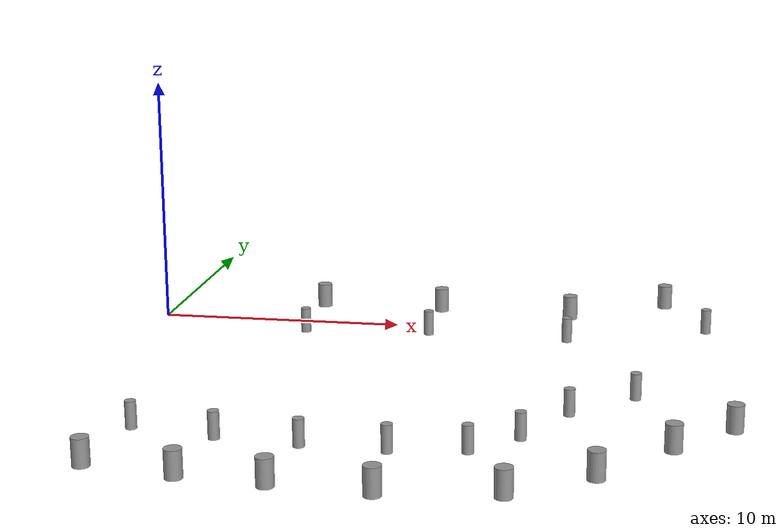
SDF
<sdf version="1.6">
 <world name="default">
  <model name="cylinder_right_clone_2">
   <link name="link_0">
    <inertial>
     <mass>1</mass>
     <inertia><ixx>0.145833</ixx><ixy>0</ixy><ixz>0</ixz><iyy>0.145833</iyy><iyz>0</iyz><izz>0.125</izz></inertia>
    </inertial>
    <visual name="visual">
     <geometry><cylinder><radius>0.2</radius><length>1</length></cylinder></geometry>
     <material>
      <lighting>1</lighting>
      <script><uri>file://media/materials/scripts/gazebo.material</uri><name>Gazebo/Grey</name></script>
      <ambient>0.3 0.3 0.3 1</ambient>
      <diffuse>0.7 0.7 0.7 1</diffuse>
      <specular>0.01 0.01 0.01 1</specular>
      <emissive>0 0 0 1</emissive>
      <shader type="vertex"><normal_map>__default__</normal_map></shader>
     </material>
    </visual>
    <collision name="collision">
     <geometry><cylinder><radius>0.2</radius><length>1</length></cylinder></geometry>
     <surface>
      <friction>
       <ode><mu>1</mu><mu2>1</mu2><fdir1>0 0 0</fdir1><slip1>0</slip1><slip2>0</slip2></ode>
       <torsional>
        <coefficient>1</coefficient>
        <patch_radius>0</patch_radius>
        <surface_radius>0</surface_radius>
        <use_patch_radius>1</use_patch_radius>
        <ode><slip>0</slip></ode>
       </torsional>
      </friction>
      <bounce><restitution_coefficient>0</restitution_coefficient><threshold>1e+06</threshold></bounce>
      <contact>
       <collide_without_contact>0</collide_without_contact>
       <collide_without_contact_bitmask>1</collide_without_contact_bitmask>
       <collide_bitmask>1</collide_bitmask>
       <ode>
        <soft_cfm>0</soft_cfm>
        <soft_erp>0.2</soft_erp>
        <kp>1e+13</kp>
        <kd>1</kd>
        <max_vel>0.01</max_vel>
        <min_depth>0</min_depth>
       </ode>
       <bullet>
        <split_impulse>1</split_impulse>
        <split_impulse_penetration_threshold>-0.01</split_impulse_penetration_threshold>
        <soft_cfm>0</soft_cfm>
        <soft_erp>0.2</soft_erp>
        <kp>1e+13</kp>
        <kd>1</kd>
       </bullet>
      </contact>
     </surface>
    </collision>
   </link>
   <static>0</static>
   <pose>6.39184 -1.35941 0.49912 0 -0 0.000408</pose>
  </model>
  <model name="cylinder_right_clone_3">
   <link name="link_0">
    <inertial>
     <mass>1</mass>
     <inertia><ixx>0.145833</ixx><ixy>0</ixy><ixz>0</ixz><iyy>0.145833</iyy><iyz>0</iyz><izz>0.125</izz></inertia>
    </inertial>
    <visual name="visual">
     <geometry><cylinder><radius>0.2</radius><length>1</length></cylinder></geometry>
     <material>
      <lighting>1</lighting>
      <script><uri>file://media/materials/scripts/gazebo.material</uri><name>Gazebo/Grey</name></script>
      <ambient>0.3 0.3 0.3 1</ambient>
      <diffuse>0.7 0.7 0.7 1</diffuse>
      <specular>0.01 0.01 0.01 1</specular>
      <emissive>0 0 0 1</emissive>
      <shader type="vertex"><normal_map>__default__</normal_map></shader>
     </material>
    </visual>
    <collision name="collision">
     <geometry><cylinder><radius>0.2</radius><length>1</length></cylinder></geometry>
     <surface>
      <friction>
       <ode><mu>1</mu><mu2>1</mu2><fdir1>0 0 0</fdir1><slip1>0</slip1><slip2>0</slip2></ode>
       <torsional>
        <coefficient>1</coefficient>
        <patch_radius>0</patch_radius>
        <surface_radius>0</surface_radius>
        <use_patch_radius>1</use_patch_radius>
        <ode><slip>0</slip></ode>
       </torsional>
      </friction>
      <bounce><restitution_coefficient>0</restitution_coefficient><threshold>1e+06</threshold></bounce>
      <contact>
       <collide_without_contact>0</collide_without_contact>
       <collide_without_contact_bitmask>1</collide_without_contact_bitmask>
       <collide_bitmask>1</collide_bitmask>
       <ode>
        <soft_cfm>0</soft_cfm>
        <soft_erp>0.2</soft_erp>
        <kp>1e+13</kp>
        <kd>1</kd>
        <max_vel>0.01</max_vel>
        <min_depth>0</min_depth>
       </ode>
       <bullet>
        <split_impulse>1</split_impulse>
        <split_impulse_penetration_threshold>-0.01</split_impulse_penetration_threshold>
        <soft_cfm>0</soft_cfm>
        <soft_erp>0.2</soft_erp>
        <kp>1e+13</kp>
        <kd>1</kd>
       </bullet>
      </contact>
     </surface>
    </collision>
   </link>
   <static>0</static>
   <pose>17.1437 -1.15298 0.49912 0 -0 0.000408</pose>
  </model>
  <model name="cylinder_right_clone_5">
   <link name="link_0">
    <inertial>
     <mass>1</mass>
     <inertia><ixx>0.145833</ixx><ixy>0</ixy><ixz>0</ixz><iyy>0.145833</iyy><iyz>0</iyz><izz>0.125</izz></inertia>
    </inertial>
    <visual name="visual">
     <geometry><cylinder><radius>0.2</radius><length>1</length></cylinder></geometry>
     <material>
      <lighting>1</lighting>
      <script><uri>file://media/materials/scripts/gazebo.material</uri><name>Gazebo/Grey</name></script>
      <ambient>0.3 0.3 0.3 1</ambient>
      <diffuse>0.7 0.7 0.7 1</diffuse>
      <specular>0.01 0.01 0.01 1</specular>
      <emissive>0 0 0 1</emissive>
      <shader type="vertex"><normal_map>__default__</normal_map></shader>
     </material>
    </visual>
    <collision name="collision">
     <geometry><cylinder><radius>0.2</radius><length>1</length></cylinder></geometry>
     <surface>
      <friction>
       <ode><mu>1</mu><mu2>1</mu2><fdir1>0 0 0</fdir1><slip1>0</slip1><slip2>0</slip2></ode>
       <torsional>
        <coefficient>1</coefficient>
        <patch_radius>0</patch_radius>
        <surface_radius>0</surface_radius>
        <use_patch_radius>1</use_patch_radius>
        <ode><slip>0</slip></ode>
       </torsional>
      </friction>
      <bounce><restitution_coefficient>0</restitution_coefficient><threshold>1e+06</threshold></bounce>
      <contact>
       <collide_without_contact>0</collide_without_contact>
       <collide_without_contact_bitmask>1</collide_without_contact_bitmask>
       <collide_bitmask>1</collide_bitmask>
       <ode>
        <soft_cfm>0</soft_cfm>
        <soft_erp>0.2</soft_erp>
        <kp>1e+13</kp>
        <kd>1</kd>
        <max_vel>0.01</max_vel>
        <min_depth>0</min_depth>
       </ode>
       <bullet>
        <split_impulse>1</split_impulse>
        <split_impulse_penetration_threshold>-0.01</split_impulse_penetration_threshold>
        <soft_cfm>0</soft_cfm>
        <soft_erp>0.2</soft_erp>
        <kp>1e+13</kp>
        <kd>1</kd>
       </bullet>
      </contact>
     </surface>
    </collision>
   </link>
   <static>0</static>
   <pose>11.4796 -1.00544 0.49912 0 -0 0.000408</pose>
  </model>
  <model name="cylinder_right_clone_6">
   <link name="link_0">
    <inertial>
     <mass>1</mass>
     <inertia><ixx>0.145833</ixx><ixy>0</ixy><ixz>0</ixz><iyy>0.145833</iyy><iyz>0</iyz><izz>0.125</izz></inertia>
    </inertial>
    <visual name="visual">
     <geometry><cylinder><radius>0.2</radius><length>1</length></cylinder></geometry>
     <material>
      <lighting>1</lighting>
      <script><uri>file://media/materials/scripts/gazebo.material</uri><name>Gazebo/Grey</name></script>
      <ambient>0.3 0.3 0.3 1</ambient>
      <diffuse>0.7 0.7 0.7 1</diffuse>
      <specular>0.01 0.01 0.01 1</specular>
      <emissive>0 0 0 1</emissive>
      <shader type="vertex"><normal_map>__default__</normal_map></shader>
     </material>
    </visual>
    <collision name="collision">
     <geometry><cylinder><radius>0.2</radius><length>1</length></cylinder></geometry>
     <surface>
      <friction>
       <ode><mu>1</mu><mu2>1</mu2><fdir1>0 0 0</fdir1><slip1>0</slip1><slip2>0</slip2></ode>
       <torsional>
        <coefficient>1</coefficient>
        <patch_radius>0</patch_radius>
        <surface_radius>0</surface_radius>
        <use_patch_radius>1</use_patch_radius>
        <ode><slip>0</slip></ode>
       </torsional>
      </friction>
      <bounce><restitution_coefficient>0</restitution_coefficient><threshold>1e+06</threshold></bounce>
      <contact>
       <collide_without_contact>0</collide_without_contact>
       <collide_without_contact_bitmask>1</collide_without_contact_bitmask>
       <collide_bitmask>1</collide_bitmask>
       <ode>
        <soft_cfm>0</soft_cfm>
        <soft_erp>0.2</soft_erp>
        <kp>1e+13</kp>
        <kd>1</kd>
        <max_vel>0.01</max_vel>
        <min_depth>0</min_depth>
       </ode>
       <bullet>
        <split_impulse>1</split_impulse>
        <split_impulse_penetration_threshold>-0.01</split_impulse_penetration_threshold>
        <soft_cfm>0</soft_cfm>
        <soft_erp>0.2</soft_erp>
        <kp>1e+13</kp>
        <kd>1</kd>
       </bullet>
      </contact>
     </surface>
    </collision>
   </link>
   <static>0</static>
   <pose>22.7344 0.858613 0.49912 0 -0 0.000422</pose>
  </model>
  <model name="cylinder_left_clone_1">
   <link name="link_1">
    <inertial>
     <mass>1</mass>
     <inertia><ixx>0.145833</ixx><ixy>0</ixy><ixz>0</ixz><iyy>0.145833</iyy><iyz>0</iyz><izz>0.125</izz></inertia>
    </inertial>
    <visual name="visual">
     <geometry><cylinder><radius>0.3</radius><length>1</length></cylinder></geometry>
     <material>
      <lighting>1</lighting>
      <script><uri>file://media/materials/scripts/gazebo.material</uri><name>Gazebo/Grey</name></script>
      <ambient>0.3 0.3 0.3 1</ambient>
      <diffuse>0.7 0.7 0.7 1</diffuse>
      <specular>0.01 0.01 0.01 1</specular>
      <emissive>0 0 0 1</emissive>
      <shader type="vertex"><normal_map>__default__</normal_map></shader>
     </material>
    </visual>
    <collision name="collision">
     <geometry><cylinder><radius>0.3</radius><length>1</length></cylinder></geometry>
     <surface>
      <friction>
       <ode><mu>1</mu><mu2>1</mu2><fdir1>0 0 0</fdir1><slip1>0</slip1><slip2>0</slip2></ode>
       <torsional>
        <coefficient>1</coefficient>
        <patch_radius>0</patch_radius>
        <surface_radius>0</surface_radius>
        <use_patch_radius>1</use_patch_radius>
        <ode><slip>0</slip></ode>
       </torsional>
      </friction>
      <bounce><restitution_coefficient>0</restitution_coefficient><threshold>1e+06</threshold></bounce>
      <contact>
       <collide_without_contact>0</collide_without_contact>
       <collide_without_contact_bitmask>1</collide_without_contact_bitmask>
       <collide_bitmask>1</collide_bitmask>
       <ode>
        <soft_cfm>0</soft_cfm>
        <soft_erp>0.2</soft_erp>
        <kp>1e+13</kp>
        <kd>1</kd>
        <max_vel>0.01</max_vel>
        <min_depth>0</min_depth>
       </ode>
       <bullet>
        <split_impulse>1</split_impulse>
        <split_impulse_penetration_threshold>-0.01</split_impulse_penetration_threshold>
        <soft_cfm>0</soft_cfm>
        <soft_erp>0.2</soft_erp>
        <kp>1e+13</kp>
        <kd>1</kd>
       </bullet>
      </contact>
     </surface>
    </collision>
   </link>
   <static>0</static>
   <pose>6.35243 2.44454 0.49912 0 -0 0</pose>
  </model>
  <model name="cylinder_left_clone_2_clone">
   <link name="link_1">
    <inertial>
     <mass>1</mass>
     <inertia><ixx>0.145833</ixx><ixy>0</ixy><ixz>0</ixz><iyy>0.145833</iyy><iyz>0</iyz><izz>0.125</izz></inertia>
    </inertial>
    <visual name="visual">
     <geometry><cylinder><radius>0.3</radius><length>1</length></cylinder></geometry>
     <material>
      <lighting>1</lighting>
      <script><uri>file://media/materials/scripts/gazebo.material</uri><name>Gazebo/Grey</name></script>
      <ambient>0.3 0.3 0.3 1</ambient>
      <diffuse>0.7 0.7 0.7 1</diffuse>
      <specular>0.01 0.01 0.01 1</specular>
      <emissive>0 0 0 1</emissive>
      <shader type="vertex"><normal_map>__default__</normal_map></shader>
     </material>
    </visual>
    <collision name="collision">
     <geometry><cylinder><radius>0.3</radius><length>1</length></cylinder></geometry>
     <surface>
      <friction>
       <ode><mu>1</mu><mu2>1</mu2><fdir1>0 0 0</fdir1><slip1>0</slip1><slip2>0</slip2></ode>
       <torsional>
        <coefficient>1</coefficient>
        <patch_radius>0</patch_radius>
        <surface_radius>0</surface_radius>
        <use_patch_radius>1</use_patch_radius>
        <ode><slip>0</slip></ode>
       </torsional>
      </friction>
      <bounce><restitution_coefficient>0</restitution_coefficient><threshold>1e+06</threshold></bounce>
      <contact>
       <collide_without_contact>0</collide_without_contact>
       <collide_without_contact_bitmask>1</collide_without_contact_bitmask>
       <collide_bitmask>1</collide_bitmask>
       <ode>
        <soft_cfm>0</soft_cfm>
        <soft_erp>0.2</soft_erp>
        <kp>1e+13</kp>
        <kd>1</kd>
        <max_vel>0.01</max_vel>
        <min_depth>0</min_depth>
       </ode>
       <bullet>
        <split_impulse>1</split_impulse>
        <split_impulse_penetration_threshold>-0.01</split_impulse_penetration_threshold>
        <soft_cfm>0</soft_cfm>
        <soft_erp>0.2</soft_erp>
        <kp>1e+13</kp>
        <kd>1</kd>
       </bullet>
      </contact>
     </surface>
    </collision>
   </link>
   <static>0</static>
   <pose>21.0723 4.35557 0.49912 0 0 -2.56426</pose>
  </model>
  <model name="cylinder_left_clone_2_clone_clone">
   <link name="link_1">
    <inertial>
     <mass>1</mass>
     <inertia><ixx>0.145833</ixx><ixy>0</ixy><ixz>0</ixz><iyy>0.145833</iyy><iyz>0</iyz><izz>0.125</izz></inertia>
    </inertial>
    <visual name="visual">
     <geometry><cylinder><radius>0.3</radius><length>1</length></cylinder></geometry>
     <material>
      <lighting>1</lighting>
      <script><uri>file://media/materials/scripts/gazebo.material</uri><name>Gazebo/Grey</name></script>
      <ambient>0.3 0.3 0.3 1</ambient>
      <diffuse>0.7 0.7 0.7 1</diffuse>
      <specular>0.01 0.01 0.01 1</specular>
      <emissive>0 0 0 1</emissive>
      <shader type="vertex"><normal_map>__default__</normal_map></shader>
     </material>
    </visual>
    <collision name="collision">
     <geometry><cylinder><radius>0.3</radius><length>1</length></cylinder></geometry>
     <surface>
      <friction>
       <ode><mu>1</mu><mu2>1</mu2><fdir1>0 0 0</fdir1><slip1>0</slip1><slip2>0</slip2></ode>
       <torsional>
        <coefficient>1</coefficient>
        <patch_radius>0</patch_radius>
        <surface_radius>0</surface_radius>
        <use_patch_radius>1</use_patch_radius>
        <ode><slip>0</slip></ode>
       </torsional>
      </friction>
      <bounce><restitution_coefficient>0</restitution_coefficient><threshold>1e+06</threshold></bounce>
      <contact>
       <collide_without_contact>0</collide_without_contact>
       <collide_without_contact_bitmask>1</collide_without_contact_bitmask>
       <collide_bitmask>1</collide_bitmask>
       <ode>
        <soft_cfm>0</soft_cfm>
        <soft_erp>0.2</soft_erp>
        <kp>1e+13</kp>
        <kd>1</kd>
        <max_vel>0.01</max_vel>
        <min_depth>0</min_depth>
       </ode>
       <bullet>
        <split_impulse>1</split_impulse>
        <split_impulse_penetration_threshold>-0.01</split_impulse_penetration_threshold>
        <soft_cfm>0</soft_cfm>
        <soft_erp>0.2</soft_erp>
        <kp>1e+13</kp>
        <kd>1</kd>
       </bullet>
      </contact>
     </surface>
    </collision>
   </link>
   <static>0</static>
   <pose>17.0861 2.10228 0.49912 0 -0 0</pose>
  </model>
  <model name="cylinder_left_clone_2_clone_10">
   <link name="link_1">
    <inertial>
     <mass>1</mass>
     <inertia><ixx>0.145833</ixx><ixy>0</ixy><ixz>0</ixz><iyy>0.145833</iyy><iyz>0</iyz><izz>0.125</izz></inertia>
    </inertial>
    <visual name="visual">
     <geometry><cylinder><radius>0.3</radius><length>1</length></cylinder></geometry>
     <material>
      <lighting>1</lighting>
      <script><uri>file://media/materials/scripts/gazebo.material</uri><name>Gazebo/Grey</name></script>
      <ambient>0.3 0.3 0.3 1</ambient>
      <diffuse>0.7 0.7 0.7 1</diffuse>
      <specular>0.01 0.01 0.01 1</specular>
      <emissive>0 0 0 1</emissive>
      <shader type="vertex"><normal_map>__default__</normal_map></shader>
     </material>
    </visual>
    <collision name="collision">
     <geometry><cylinder><radius>0.3</radius><length>1</length></cylinder></geometry>
     <surface>
      <friction>
       <ode><mu>1</mu><mu2>1</mu2><fdir1>0 0 0</fdir1><slip1>0</slip1><slip2>0</slip2></ode>
       <torsional>
        <coefficient>1</coefficient>
        <patch_radius>0</patch_radius>
        <surface_radius>0</surface_radius>
        <use_patch_radius>1</use_patch_radius>
        <ode><slip>0</slip></ode>
       </torsional>
      </friction>
      <bounce><restitution_coefficient>0</restitution_coefficient><threshold>1e+06</threshold></bounce>
      <contact>
       <collide_without_contact>0</collide_without_contact>
       <collide_without_contact_bitmask>1</collide_without_contact_bitmask>
       <collide_bitmask>1</collide_bitmask>
       <ode>
        <soft_cfm>0</soft_cfm>
        <soft_erp>0.2</soft_erp>
        <kp>1e+13</kp>
        <kd>1</kd>
        <max_vel>0.01</max_vel>
        <min_depth>0</min_depth>
       </ode>
       <bullet>
        <split_impulse>1</split_impulse>
        <split_impulse_penetration_threshold>-0.01</split_impulse_penetration_threshold>
        <soft_cfm>0</soft_cfm>
        <soft_erp>0.2</soft_erp>
        <kp>1e+13</kp>
        <kd>1</kd>
       </bullet>
      </contact>
     </surface>
    </collision>
   </link>
   <static>0</static>
   <pose>23.3986 -10.3326 0.49912 0 -0 0</pose>
  </model>
  <model name="cylinder_left_clone_2_clone_11">
   <link name="link_1">
    <inertial>
     <mass>1</mass>
     <inertia><ixx>0.145833</ixx><ixy>0</ixy><ixz>0</ixz><iyy>0.145833</iyy><iyz>0</iyz><izz>0.125</izz></inertia>
    </inertial>
    <visual name="visual">
     <geometry><cylinder><radius>0.3</radius><length>1</length></cylinder></geometry>
     <material>
      <lighting>1</lighting>
      <script><uri>file://media/materials/scripts/gazebo.material</uri><name>Gazebo/Grey</name></script>
      <ambient>0.3 0.3 0.3 1</ambient>
      <diffuse>0.7 0.7 0.7 1</diffuse>
      <specular>0.01 0.01 0.01 1</specular>
      <emissive>0 0 0 1</emissive>
      <shader type="vertex"><normal_map>__default__</normal_map></shader>
     </material>
    </visual>
    <collision name="collision">
     <geometry><cylinder><radius>0.3</radius><length>1</length></cylinder></geometry>
     <surface>
      <friction>
       <ode><mu>1</mu><mu2>1</mu2><fdir1>0 0 0</fdir1><slip1>0</slip1><slip2>0</slip2></ode>
       <torsional>
        <coefficient>1</coefficient>
        <patch_radius>0</patch_radius>
        <surface_radius>0</surface_radius>
        <use_patch_radius>1</use_patch_radius>
        <ode><slip>0</slip></ode>
       </torsional>
      </friction>
      <bounce><restitution_coefficient>0</restitution_coefficient><threshold>1e+06</threshold></bounce>
      <contact>
       <collide_without_contact>0</collide_without_contact>
       <collide_without_contact_bitmask>1</collide_without_contact_bitmask>
       <collide_bitmask>1</collide_bitmask>
       <ode>
        <soft_cfm>0</soft_cfm>
        <soft_erp>0.2</soft_erp>
        <kp>1e+13</kp>
        <kd>1</kd>
        <max_vel>0.01</max_vel>
        <min_depth>0</min_depth>
       </ode>
       <bullet>
        <split_impulse>1</split_impulse>
        <split_impulse_penetration_threshold>-0.01</split_impulse_penetration_threshold>
        <soft_cfm>0</soft_cfm>
        <soft_erp>0.2</soft_erp>
        <kp>1e+13</kp>
        <kd>1</kd>
       </bullet>
      </contact>
     </surface>
    </collision>
   </link>
   <static>0</static>
   <pose>21.3275 -12.4464 0.49912 0 0 -2e-06</pose>
  </model>
  <model name="cylinder_left_clone_2_clone_12">
   <link name="link_1">
    <inertial>
     <mass>1</mass>
     <inertia><ixx>0.145833</ixx><ixy>0</ixy><ixz>0</ixz><iyy>0.145833</iyy><iyz>0</iyz><izz>0.125</izz></inertia>
    </inertial>
    <visual name="visual">
     <geometry><cylinder><radius>0.3</radius><length>1</length></cylinder></geometry>
     <material>
      <lighting>1</lighting>
      <script><uri>file://media/materials/scripts/gazebo.material</uri><name>Gazebo/Grey</name></script>
      <ambient>0.3 0.3 0.3 1</ambient>
      <diffuse>0.7 0.7 0.7 1</diffuse>
      <specular>0.01 0.01 0.01 1</specular>
      <emissive>0 0 0 1</emissive>
      <shader type="vertex"><normal_map>__default__</normal_map></shader>
     </material>
    </visual>
    <collision name="collision">
     <geometry><cylinder><radius>0.3</radius><length>1</length></cylinder></geometry>
     <surface>
      <friction>
       <ode><mu>1</mu><mu2>1</mu2><fdir1>0 0 0</fdir1><slip1>0</slip1><slip2>0</slip2></ode>
       <torsional>
        <coefficient>1</coefficient>
        <patch_radius>0</patch_radius>
        <surface_radius>0</surface_radius>
        <use_patch_radius>1</use_patch_radius>
        <ode><slip>0</slip></ode>
       </torsional>
      </friction>
      <bounce><restitution_coefficient>0</restitution_coefficient><threshold>1e+06</threshold></bounce>
      <contact>
       <collide_without_contact>0</collide_without_contact>
       <collide_without_contact_bitmask>1</collide_without_contact_bitmask>
       <collide_bitmask>1</collide_bitmask>
       <ode>
        <soft_cfm>0</soft_cfm>
        <soft_erp>0.2</soft_erp>
        <kp>1e+13</kp>
        <kd>1</kd>
        <max_vel>0.01</max_vel>
        <min_depth>0</min_depth>
       </ode>
       <bullet>
        <split_impulse>1</split_impulse>
        <split_impulse_penetration_threshold>-0.01</split_impulse_penetration_threshold>
        <soft_cfm>0</soft_cfm>
        <soft_erp>0.2</soft_erp>
        <kp>1e+13</kp>
        <kd>1</kd>
       </bullet>
      </contact>
     </surface>
    </collision>
   </link>
   <static>0</static>
   <pose>18.9287 -15.1342 0.49912 0 -0 0</pose>
  </model>
  <model name="cylinder_left_clone_2_clone_13">
   <link name="link_1">
    <inertial>
     <mass>1</mass>
     <inertia><ixx>0.145833</ixx><ixy>0</ixy><ixz>0</ixz><iyy>0.145833</iyy><iyz>0</iyz><izz>0.125</izz></inertia>
    </inertial>
    <visual name="visual">
     <geometry><cylinder><radius>0.3</radius><length>1</length></cylinder></geometry>
     <material>
      <lighting>1</lighting>
      <script><uri>file://media/materials/scripts/gazebo.material</uri><name>Gazebo/Grey</name></script>
      <ambient>0.3 0.3 0.3 1</ambient>
      <diffuse>0.7 0.7 0.7 1</diffuse>
      <specular>0.01 0.01 0.01 1</specular>
      <emissive>0 0 0 1</emissive>
      <shader type="vertex"><normal_map>__default__</normal_map></shader>
     </material>
    </visual>
    <collision name="collision">
     <geometry><cylinder><radius>0.3</radius><length>1</length></cylinder></geometry>
     <surface>
      <friction>
       <ode><mu>1</mu><mu2>1</mu2><fdir1>0 0 0</fdir1><slip1>0</slip1><slip2>0</slip2></ode>
       <torsional>
        <coefficient>1</coefficient>
        <patch_radius>0</patch_radius>
        <surface_radius>0</surface_radius>
        <use_patch_radius>1</use_patch_radius>
        <ode><slip>0</slip></ode>
       </torsional>
      </friction>
      <bounce><restitution_coefficient>0</restitution_coefficient><threshold>1e+06</threshold></bounce>
      <contact>
       <collide_without_contact>0</collide_without_contact>
       <collide_without_contact_bitmask>1</collide_without_contact_bitmask>
       <collide_bitmask>1</collide_bitmask>
       <ode>
        <soft_cfm>0</soft_cfm>
        <soft_erp>0.2</soft_erp>
        <kp>1e+13</kp>
        <kd>1</kd>
        <max_vel>0.01</max_vel>
        <min_depth>0</min_depth>
       </ode>
       <bullet>
        <split_impulse>1</split_impulse>
        <split_impulse_penetration_threshold>-0.01</split_impulse_penetration_threshold>
        <soft_cfm>0</soft_cfm>
        <soft_erp>0.2</soft_erp>
        <kp>1e+13</kp>
        <kd>1</kd>
       </bullet>
      </contact>
     </surface>
    </collision>
   </link>
   <static>0</static>
   <pose>16.2148 -16.9218 0.49912 0 -0 0</pose>
  </model>
  <model name="cylinder_left_clone_2_clone_14">
   <link name="link_1">
    <inertial>
     <mass>1</mass>
     <inertia><ixx>0.145833</ixx><ixy>0</ixy><ixz>0</ixz><iyy>0.145833</iyy><iyz>0</iyz><izz>0.125</izz></inertia>
    </inertial>
    <visual name="visual">
     <geometry><cylinder><radius>0.3</radius><length>1</length></cylinder></geometry>
     <material>
      <lighting>1</lighting>
      <script><uri>file://media/materials/scripts/gazebo.material</uri><name>Gazebo/Grey</name></script>
      <ambient>0.3 0.3 0.3 1</ambient>
      <diffuse>0.7 0.7 0.7 1</diffuse>
      <specular>0.01 0.01 0.01 1</specular>
      <emissive>0 0 0 1</emissive>
      <shader type="vertex"><normal_map>__default__</normal_map></shader>
     </material>
    </visual>
    <collision name="collision">
     <geometry><cylinder><radius>0.3</radius><length>1</length></cylinder></geometry>
     <surface>
      <friction>
       <ode><mu>1</mu><mu2>1</mu2><fdir1>0 0 0</fdir1><slip1>0</slip1><slip2>0</slip2></ode>
       <torsional>
        <coefficient>1</coefficient>
        <patch_radius>0</patch_radius>
        <surface_radius>0</surface_radius>
        <use_patch_radius>1</use_patch_radius>
        <ode><slip>0</slip></ode>
       </torsional>
      </friction>
      <bounce><restitution_coefficient>0</restitution_coefficient><threshold>1e+06</threshold></bounce>
      <contact>
       <collide_without_contact>0</collide_without_contact>
       <collide_without_contact_bitmask>1</collide_without_contact_bitmask>
       <collide_bitmask>1</collide_bitmask>
       <ode>
        <soft_cfm>0</soft_cfm>
        <soft_erp>0.2</soft_erp>
        <kp>1e+13</kp>
        <kd>1</kd>
        <max_vel>0.01</max_vel>
        <min_depth>0</min_depth>
       </ode>
       <bullet>
        <split_impulse>1</split_impulse>
        <split_impulse_penetration_threshold>-0.01</split_impulse_penetration_threshold>
        <soft_cfm>0</soft_cfm>
        <soft_erp>0.2</soft_erp>
        <kp>1e+13</kp>
        <kd>1</kd>
       </bullet>
      </contact>
     </surface>
    </collision>
   </link>
   <static>0</static>
   <pose>12.2538 -17.3818 0.49912 0 0 -3.01661</pose>
  </model>
  <model name="cylinder_left_clone_2_clone_15">
   <link name="link_1">
    <inertial>
     <mass>1</mass>
     <inertia><ixx>0.145833</ixx><ixy>0</ixy><ixz>0</ixz><iyy>0.145833</iyy><iyz>0</iyz><izz>0.125</izz></inertia>
    </inertial>
    <visual name="visual">
     <geometry><cylinder><radius>0.3</radius><length>1</length></cylinder></geometry>
     <material>
      <lighting>1</lighting>
      <script><uri>file://media/materials/scripts/gazebo.material</uri><name>Gazebo/Grey</name></script>
      <ambient>0.3 0.3 0.3 1</ambient>
      <diffuse>0.7 0.7 0.7 1</diffuse>
      <specular>0.01 0.01 0.01 1</specular>
      <emissive>0 0 0 1</emissive>
      <shader type="vertex"><normal_map>__default__</normal_map></shader>
     </material>
    </visual>
    <collision name="collision">
     <geometry><cylinder><radius>0.3</radius><length>1</length></cylinder></geometry>
     <surface>
      <friction>
       <ode><mu>1</mu><mu2>1</mu2><fdir1>0 0 0</fdir1><slip1>0</slip1><slip2>0</slip2></ode>
       <torsional>
        <coefficient>1</coefficient>
        <patch_radius>0</patch_radius>
        <surface_radius>0</surface_radius>
        <use_patch_radius>1</use_patch_radius>
        <ode><slip>0</slip></ode>
       </torsional>
      </friction>
      <bounce><restitution_coefficient>0</restitution_coefficient><threshold>1e+06</threshold></bounce>
      <contact>
       <collide_without_contact>0</collide_without_contact>
       <collide_without_contact_bitmask>1</collide_without_contact_bitmask>
       <collide_bitmask>1</collide_bitmask>
       <ode>
        <soft_cfm>0</soft_cfm>
        <soft_erp>0.2</soft_erp>
        <kp>1e+13</kp>
        <kd>1</kd>
        <max_vel>0.01</max_vel>
        <min_depth>0</min_depth>
       </ode>
       <bullet>
        <split_impulse>1</split_impulse>
        <split_impulse_penetration_threshold>-0.01</split_impulse_penetration_threshold>
        <soft_cfm>0</soft_cfm>
        <soft_erp>0.2</soft_erp>
        <kp>1e+13</kp>
        <kd>1</kd>
       </bullet>
      </contact>
     </surface>
    </collision>
   </link>
   <static>0</static>
   <pose>8.85322 -17.1919 0.49912 0 -0 1.95059</pose>
  </model>
  <model name="cylinder_right_clone_clone_1">
   <link name="link_0">
    <inertial>
     <mass>1</mass>
     <inertia><ixx>0.145833</ixx><ixy>0</ixy><ixz>0</ixz><iyy>0.145833</iyy><iyz>0</iyz><izz>0.125</izz></inertia>
    </inertial>
    <visual name="visual">
     <geometry><cylinder><radius>0.2</radius><length>1</length></cylinder></geometry>
     <material>
      <lighting>1</lighting>
      <script><uri>file://media/materials/scripts/gazebo.material</uri><name>Gazebo/Grey</name></script>
      <ambient>0.3 0.3 0.3 1</ambient>
      <diffuse>0.7 0.7 0.7 1</diffuse>
      <specular>0.01 0.01 0.01 1</specular>
      <emissive>0 0 0 1</emissive>
      <shader type="vertex"><normal_map>__default__</normal_map></shader>
     </material>
    </visual>
    <collision name="collision">
     <geometry><cylinder><radius>0.2</radius><length>1</length></cylinder></geometry>
     <surface>
      <friction>
       <ode><mu>1</mu><mu2>1</mu2><fdir1>0 0 0</fdir1><slip1>0</slip1><slip2>0</slip2></ode>
       <torsional>
        <coefficient>1</coefficient>
        <patch_radius>0</patch_radius>
        <surface_radius>0</surface_radius>
        <use_patch_radius>1</use_patch_radius>
        <ode><slip>0</slip></ode>
       </torsional>
      </friction>
      <bounce><restitution_coefficient>0</restitution_coefficient><threshold>1e+06</threshold></bounce>
      <contact>
       <collide_without_contact>0</collide_without_contact>
       <collide_without_contact_bitmask>1</collide_without_contact_bitmask>
       <collide_bitmask>1</collide_bitmask>
       <ode>
        <soft_cfm>0</soft_cfm>
        <soft_erp>0.2</soft_erp>
        <kp>1e+13</kp>
        <kd>1</kd>
        <max_vel>0.01</max_vel>
        <min_depth>0</min_depth>
       </ode>
       <bullet>
        <split_impulse>1</split_impulse>
        <split_impulse_penetration_threshold>-0.01</split_impulse_penetration_threshold>
        <soft_cfm>0</soft_cfm>
        <soft_erp>0.2</soft_erp>
        <kp>1e+13</kp>
        <kd>1</kd>
       </bullet>
      </contact>
     </surface>
    </collision>
   </link>
   <static>0</static>
   <pose>6.12282 -13.5659 0.49912 0 -0 0.000403</pose>
  </model>
  <model name="cylinder_right_clone_clone_2">
   <link name="link_0">
    <inertial>
     <mass>1</mass>
     <inertia><ixx>0.145833</ixx><ixy>0</ixy><ixz>0</ixz><iyy>0.145833</iyy><iyz>0</iyz><izz>0.125</izz></inertia>
    </inertial>
    <visual name="visual">
     <geometry><cylinder><radius>0.2</radius><length>1</length></cylinder></geometry>
     <material>
      <lighting>1</lighting>
      <script><uri>file://media/materials/scripts/gazebo.material</uri><name>Gazebo/Grey</name></script>
      <ambient>0.3 0.3 0.3 1</ambient>
      <diffuse>0.7 0.7 0.7 1</diffuse>
      <specular>0.01 0.01 0.01 1</specular>
      <emissive>0 0 0 1</emissive>
      <shader type="vertex"><normal_map>__default__</normal_map></shader>
     </material>
    </visual>
    <collision name="collision">
     <geometry><cylinder><radius>0.2</radius><length>1</length></cylinder></geometry>
     <surface>
      <friction>
       <ode><mu>1</mu><mu2>1</mu2><fdir1>0 0 0</fdir1><slip1>0</slip1><slip2>0</slip2></ode>
       <torsional>
        <coefficient>1</coefficient>
        <patch_radius>0</patch_radius>
        <surface_radius>0</surface_radius>
        <use_patch_radius>1</use_patch_radius>
        <ode><slip>0</slip></ode>
       </torsional>
      </friction>
      <bounce><restitution_coefficient>0</restitution_coefficient><threshold>1e+06</threshold></bounce>
      <contact>
       <collide_without_contact>0</collide_without_contact>
       <collide_without_contact_bitmask>1</collide_without_contact_bitmask>
       <collide_bitmask>1</collide_bitmask>
       <ode>
        <soft_cfm>0</soft_cfm>
        <soft_erp>0.2</soft_erp>
        <kp>1e+13</kp>
        <kd>1</kd>
        <max_vel>0.01</max_vel>
        <min_depth>0</min_depth>
       </ode>
       <bullet>
        <split_impulse>1</split_impulse>
        <split_impulse_penetration_threshold>-0.01</split_impulse_penetration_threshold>
        <soft_cfm>0</soft_cfm>
        <soft_erp>0.2</soft_erp>
        <kp>1e+13</kp>
        <kd>1</kd>
       </bullet>
      </contact>
     </surface>
    </collision>
   </link>
   <static>0</static>
   <pose>3.0542 -13.0611 0.49912 0 -0 0.000415</pose>
  </model>
  <model name="cylinder_right_clone_clone_4">
   <link name="link_0">
    <inertial>
     <mass>1</mass>
     <inertia><ixx>0.145833</ixx><ixy>0</ixy><ixz>0</ixz><iyy>0.145833</iyy><iyz>0</iyz><izz>0.125</izz></inertia>
    </inertial>
    <visual name="visual">
     <geometry><cylinder><radius>0.2</radius><length>1</length></cylinder></geometry>
     <material>
      <lighting>1</lighting>
      <script><uri>file://media/materials/scripts/gazebo.material</uri><name>Gazebo/Grey</name></script>
      <ambient>0.3 0.3 0.3 1</ambient>
      <diffuse>0.7 0.7 0.7 1</diffuse>
      <specular>0.01 0.01 0.01 1</specular>
      <emissive>0 0 0 1</emissive>
      <shader type="vertex"><normal_map>__default__</normal_map></shader>
     </material>
    </visual>
    <collision name="collision">
     <geometry><cylinder><radius>0.2</radius><length>1</length></cylinder></geometry>
     <surface>
      <friction>
       <ode><mu>1</mu><mu2>1</mu2><fdir1>0 0 0</fdir1><slip1>0</slip1><slip2>0</slip2></ode>
       <torsional>
        <coefficient>1</coefficient>
        <patch_radius>0</patch_radius>
        <surface_radius>0</surface_radius>
        <use_patch_radius>1</use_patch_radius>
        <ode><slip>0</slip></ode>
       </torsional>
      </friction>
      <bounce><restitution_coefficient>0</restitution_coefficient><threshold>1e+06</threshold></bounce>
      <contact>
       <collide_without_contact>0</collide_without_contact>
       <collide_without_contact_bitmask>1</collide_without_contact_bitmask>
       <collide_bitmask>1</collide_bitmask>
       <ode>
        <soft_cfm>0</soft_cfm>
        <soft_erp>0.2</soft_erp>
        <kp>1e+13</kp>
        <kd>1</kd>
        <max_vel>0.01</max_vel>
        <min_depth>0</min_depth>
       </ode>
       <bullet>
        <split_impulse>1</split_impulse>
        <split_impulse_penetration_threshold>-0.01</split_impulse_penetration_threshold>
        <soft_cfm>0</soft_cfm>
        <soft_erp>0.2</soft_erp>
        <kp>1e+13</kp>
        <kd>1</kd>
       </bullet>
      </contact>
     </surface>
    </collision>
   </link>
   <static>0</static>
   <pose>9.09755 -13.8257 0.49912 0 -0 0.000395</pose>
  </model>
  <model name="cylinder_right_clone_clone_5">
   <link name="link_0">
    <inertial>
     <mass>1</mass>
     <inertia><ixx>0.145833</ixx><ixy>0</ixy><ixz>0</ixz><iyy>0.145833</iyy><iyz>0</iyz><izz>0.125</izz></inertia>
    </inertial>
    <visual name="visual">
     <geometry><cylinder><radius>0.2</radius><length>1</length></cylinder></geometry>
     <material>
      <lighting>1</lighting>
      <script><uri>file://media/materials/scripts/gazebo.material</uri><name>Gazebo/Grey</name></script>
      <ambient>0.3 0.3 0.3 1</ambient>
      <diffuse>0.7 0.7 0.7 1</diffuse>
      <specular>0.01 0.01 0.01 1</specular>
      <emissive>0 0 0 1</emissive>
      <shader type="vertex"><normal_map>__default__</normal_map></shader>
     </material>
    </visual>
    <collision name="collision">
     <geometry><cylinder><radius>0.2</radius><length>1</length></cylinder></geometry>
     <surface>
      <friction>
       <ode><mu>1</mu><mu2>1</mu2><fdir1>0 0 0</fdir1><slip1>0</slip1><slip2>0</slip2></ode>
       <torsional>
        <coefficient>1</coefficient>
        <patch_radius>0</patch_radius>
        <surface_radius>0</surface_radius>
        <use_patch_radius>1</use_patch_radius>
        <ode><slip>0</slip></ode>
       </torsional>
      </friction>
      <bounce><restitution_coefficient>0</restitution_coefficient><threshold>1e+06</threshold></bounce>
      <contact>
       <collide_without_contact>0</collide_without_contact>
       <collide_without_contact_bitmask>1</collide_without_contact_bitmask>
       <collide_bitmask>1</collide_bitmask>
       <ode>
        <soft_cfm>0</soft_cfm>
        <soft_erp>0.2</soft_erp>
        <kp>1e+13</kp>
        <kd>1</kd>
        <max_vel>0.01</max_vel>
        <min_depth>0</min_depth>
       </ode>
       <bullet>
        <split_impulse>1</split_impulse>
        <split_impulse_penetration_threshold>-0.01</split_impulse_penetration_threshold>
        <soft_cfm>0</soft_cfm>
        <soft_erp>0.2</soft_erp>
        <kp>1e+13</kp>
        <kd>1</kd>
       </bullet>
      </contact>
     </surface>
    </collision>
   </link>
   <static>0</static>
   <pose>12.0688 -13.9023 0.49912 0 -0 0.000409</pose>
  </model>
  <model name="cylinder_right_clone_clone_6">
   <link name="link_0">
    <inertial>
     <mass>1</mass>
     <inertia><ixx>0.145833</ixx><ixy>0</ixy><ixz>0</ixz><iyy>0.145833</iyy><iyz>0</iyz><izz>0.125</izz></inertia>
    </inertial>
    <visual name="visual">
     <geometry><cylinder><radius>0.2</radius><length>1</length></cylinder></geometry>
     <material>
      <lighting>1</lighting>
      <script><uri>file://media/materials/scripts/gazebo.material</uri><name>Gazebo/Grey</name></script>
      <ambient>0.3 0.3 0.3 1</ambient>
      <diffuse>0.7 0.7 0.7 1</diffuse>
      <specular>0.01 0.01 0.01 1</specular>
      <emissive>0 0 0 1</emissive>
      <shader type="vertex"><normal_map>__default__</normal_map></shader>
     </material>
    </visual>
    <collision name="collision">
     <geometry><cylinder><radius>0.2</radius><length>1</length></cylinder></geometry>
     <surface>
      <friction>
       <ode><mu>1</mu><mu2>1</mu2><fdir1>0 0 0</fdir1><slip1>0</slip1><slip2>0</slip2></ode>
       <torsional>
        <coefficient>1</coefficient>
        <patch_radius>0</patch_radius>
        <surface_radius>0</surface_radius>
        <use_patch_radius>1</use_patch_radius>
        <ode><slip>0</slip></ode>
       </torsional>
      </friction>
      <bounce><restitution_coefficient>0</restitution_coefficient><threshold>1e+06</threshold></bounce>
      <contact>
       <collide_without_contact>0</collide_without_contact>
       <collide_without_contact_bitmask>1</collide_without_contact_bitmask>
       <collide_bitmask>1</collide_bitmask>
       <ode>
        <soft_cfm>0</soft_cfm>
        <soft_erp>0.2</soft_erp>
        <kp>1e+13</kp>
        <kd>1</kd>
        <max_vel>0.01</max_vel>
        <min_depth>0</min_depth>
       </ode>
       <bullet>
        <split_impulse>1</split_impulse>
        <split_impulse_penetration_threshold>-0.01</split_impulse_penetration_threshold>
        <soft_cfm>0</soft_cfm>
        <soft_erp>0.2</soft_erp>
        <kp>1e+13</kp>
        <kd>1</kd>
       </bullet>
      </contact>
     </surface>
    </collision>
   </link>
   <static>0</static>
   <pose>14.6899 -13.5499 0.49912 0 -0 0.000431</pose>
  </model>
  <model name="cylinder_right_clone_clone_7">
   <link name="link_0">
    <inertial>
     <mass>1</mass>
     <inertia><ixx>0.145833</ixx><ixy>0</ixy><ixz>0</ixz><iyy>0.145833</iyy><iyz>0</iyz><izz>0.125</izz></inertia>
    </inertial>
    <visual name="visual">
     <geometry><cylinder><radius>0.2</radius><length>1</length></cylinder></geometry>
     <material>
      <lighting>1</lighting>
      <script><uri>file://media/materials/scripts/gazebo.material</uri><name>Gazebo/Grey</name></script>
      <ambient>0.3 0.3 0.3 1</ambient>
      <diffuse>0.7 0.7 0.7 1</diffuse>
      <specular>0.01 0.01 0.01 1</specular>
      <emissive>0 0 0 1</emissive>
      <shader type="vertex"><normal_map>__default__</normal_map></shader>
     </material>
    </visual>
    <collision name="collision">
     <geometry><cylinder><radius>0.2</radius><length>1</length></cylinder></geometry>
     <surface>
      <friction>
       <ode><mu>1</mu><mu2>1</mu2><fdir1>0 0 0</fdir1><slip1>0</slip1><slip2>0</slip2></ode>
       <torsional>
        <coefficient>1</coefficient>
        <patch_radius>0</patch_radius>
        <surface_radius>0</surface_radius>
        <use_patch_radius>1</use_patch_radius>
        <ode><slip>0</slip></ode>
       </torsional>
      </friction>
      <bounce><restitution_coefficient>0</restitution_coefficient><threshold>1e+06</threshold></bounce>
      <contact>
       <collide_without_contact>0</collide_without_contact>
       <collide_without_contact_bitmask>1</collide_without_contact_bitmask>
       <collide_bitmask>1</collide_bitmask>
       <ode>
        <soft_cfm>0</soft_cfm>
        <soft_erp>0.2</soft_erp>
        <kp>1e+13</kp>
        <kd>1</kd>
        <max_vel>0.01</max_vel>
        <min_depth>0</min_depth>
       </ode>
       <bullet>
        <split_impulse>1</split_impulse>
        <split_impulse_penetration_threshold>-0.01</split_impulse_penetration_threshold>
        <soft_cfm>0</soft_cfm>
        <soft_erp>0.2</soft_erp>
        <kp>1e+13</kp>
        <kd>1</kd>
       </bullet>
      </contact>
     </surface>
    </collision>
   </link>
   <static>0</static>
   <pose>16.2832 -12.1217 0.49912 0 -0 0.000386</pose>
  </model>
  <model name="cylinder_right_clone_clone_8">
   <link name="link_0">
    <inertial>
     <mass>1</mass>
     <inertia><ixx>0.145833</ixx><ixy>0</ixy><ixz>0</ixz><iyy>0.145833</iyy><iyz>0</iyz><izz>0.125</izz></inertia>
    </inertial>
    <visual name="visual">
     <geometry><cylinder><radius>0.2</radius><length>1</length></cylinder></geometry>
     <material>
      <lighting>1</lighting>
      <script><uri>file://media/materials/scripts/gazebo.material</uri><name>Gazebo/Grey</name></script>
      <ambient>0.3 0.3 0.3 1</ambient>
      <diffuse>0.7 0.7 0.7 1</diffuse>
      <specular>0.01 0.01 0.01 1</specular>
      <emissive>0 0 0 1</emissive>
      <shader type="vertex"><normal_map>__default__</normal_map></shader>
     </material>
    </visual>
    <collision name="collision">
     <geometry><cylinder><radius>0.2</radius><length>1</length></cylinder></geometry>
     <surface>
      <friction>
       <ode><mu>1</mu><mu2>1</mu2><fdir1>0 0 0</fdir1><slip1>0</slip1><slip2>0</slip2></ode>
       <torsional>
        <coefficient>1</coefficient>
        <patch_radius>0</patch_radius>
        <surface_radius>0</surface_radius>
        <use_patch_radius>1</use_patch_radius>
        <ode><slip>0</slip></ode>
       </torsional>
      </friction>
      <bounce><restitution_coefficient>0</restitution_coefficient><threshold>1e+06</threshold></bounce>
      <contact>
       <collide_without_contact>0</collide_without_contact>
       <collide_without_contact_bitmask>1</collide_without_contact_bitmask>
       <collide_bitmask>1</collide_bitmask>
       <ode>
        <soft_cfm>0</soft_cfm>
        <soft_erp>0.2</soft_erp>
        <kp>1e+13</kp>
        <kd>1</kd>
        <max_vel>0.01</max_vel>
        <min_depth>0</min_depth>
       </ode>
       <bullet>
        <split_impulse>1</split_impulse>
        <split_impulse_penetration_threshold>-0.01</split_impulse_penetration_threshold>
        <soft_cfm>0</soft_cfm>
        <soft_erp>0.2</soft_erp>
        <kp>1e+13</kp>
        <kd>1</kd>
       </bullet>
      </contact>
     </surface>
    </collision>
   </link>
   <static>0</static>
   <pose>17.7551 -9.60618 0.49912 0 -0 0.000383</pose>
  </model>
  <model name="cylinder_right_clone_clone_9">
   <link name="link_0">
    <inertial>
     <mass>1</mass>
     <inertia><ixx>0.145833</ixx><ixy>0</ixy><ixz>0</ixz><iyy>0.145833</iyy><iyz>0</iyz><izz>0.125</izz></inertia>
    </inertial>
    <visual name="visual">
     <geometry><cylinder><radius>0.2</radius><length>1</length></cylinder></geometry>
     <material>
      <lighting>1</lighting>
      <script><uri>file://media/materials/scripts/gazebo.material</uri><name>Gazebo/Grey</name></script>
      <ambient>0.3 0.3 0.3 1</ambient>
      <diffuse>0.7 0.7 0.7 1</diffuse>
      <specular>0.01 0.01 0.01 1</specular>
      <emissive>0 0 0 1</emissive>
      <shader type="vertex"><normal_map>__default__</normal_map></shader>
     </material>
    </visual>
    <collision name="collision">
     <geometry><cylinder><radius>0.2</radius><length>1</length></cylinder></geometry>
     <surface>
      <friction>
       <ode><mu>1</mu><mu2>1</mu2><fdir1>0 0 0</fdir1><slip1>0</slip1><slip2>0</slip2></ode>
       <torsional>
        <coefficient>1</coefficient>
        <patch_radius>0</patch_radius>
        <surface_radius>0</surface_radius>
        <use_patch_radius>1</use_patch_radius>
        <ode><slip>0</slip></ode>
       </torsional>
      </friction>
      <bounce><restitution_coefficient>0</restitution_coefficient><threshold>1e+06</threshold></bounce>
      <contact>
       <collide_without_contact>0</collide_without_contact>
       <collide_without_contact_bitmask>1</collide_without_contact_bitmask>
       <collide_bitmask>1</collide_bitmask>
       <ode>
        <soft_cfm>0</soft_cfm>
        <soft_erp>0.2</soft_erp>
        <kp>1e+13</kp>
        <kd>1</kd>
        <max_vel>0.01</max_vel>
        <min_depth>0</min_depth>
       </ode>
       <bullet>
        <split_impulse>1</split_impulse>
        <split_impulse_penetration_threshold>-0.01</split_impulse_penetration_threshold>
        <soft_cfm>0</soft_cfm>
        <soft_erp>0.2</soft_erp>
        <kp>1e+13</kp>
        <kd>1</kd>
       </bullet>
      </contact>
     </surface>
    </collision>
   </link>
   <static>0</static>
   <pose>20.0172 -7.60468 0.49912 0 -0 0.000398</pose>
  </model>
  <model name="cylinder_left_clone_2_clone_15_clone">
   <link name="link_1">
    <inertial>
     <mass>1</mass>
     <inertia><ixx>0.145833</ixx><ixy>0</ixy><ixz>0</ixz><iyy>0.145833</iyy><iyz>0</iyz><izz>0.125</izz></inertia>
    </inertial>
    <visual name="visual">
     <geometry><cylinder><radius>0.3</radius><length>1</length></cylinder></geometry>
     <material>
      <lighting>1</lighting>
      <script><uri>file://media/materials/scripts/gazebo.material</uri><name>Gazebo/Grey</name></script>
      <ambient>0.3 0.3 0.3 1</ambient>
      <diffuse>0.7 0.7 0.7 1</diffuse>
      <specular>0.01 0.01 0.01 1</specular>
      <emissive>0 0 0 1</emissive>
      <shader type="vertex"><normal_map>__default__</normal_map></shader>
     </material>
    </visual>
    <collision name="collision">
     <geometry><cylinder><radius>0.3</radius><length>1</length></cylinder></geometry>
     <surface>
      <friction>
       <ode><mu>1</mu><mu2>1</mu2><fdir1>0 0 0</fdir1><slip1>0</slip1><slip2>0</slip2></ode>
       <torsional>
        <coefficient>1</coefficient>
        <patch_radius>0</patch_radius>
        <surface_radius>0</surface_radius>
        <use_patch_radius>1</use_patch_radius>
        <ode><slip>0</slip></ode>
       </torsional>
      </friction>
      <bounce><restitution_coefficient>0</restitution_coefficient><threshold>1e+06</threshold></bounce>
      <contact>
       <collide_without_contact>0</collide_without_contact>
       <collide_without_contact_bitmask>1</collide_without_contact_bitmask>
       <collide_bitmask>1</collide_bitmask>
       <ode>
        <soft_cfm>0</soft_cfm>
        <soft_erp>0.2</soft_erp>
        <kp>1e+13</kp>
        <kd>1</kd>
        <max_vel>0.01</max_vel>
        <min_depth>0</min_depth>
       </ode>
       <bullet>
        <split_impulse>1</split_impulse>
        <split_impulse_penetration_threshold>-0.01</split_impulse_penetration_threshold>
        <soft_cfm>0</soft_cfm>
        <soft_erp>0.2</soft_erp>
        <kp>1e+13</kp>
        <kd>1</kd>
       </bullet>
      </contact>
     </surface>
    </collision>
   </link>
   <static>0</static>
   <pose>5.85158 -16.9824 0.49912 0 -0 1.95059</pose>
  </model>
  <model name="cylinder_left_clone_2_clone_15_clone_0">
   <link name="link_1">
    <inertial>
     <mass>1</mass>
     <inertia><ixx>0.145833</ixx><ixy>0</ixy><ixz>0</ixz><iyy>0.145833</iyy><iyz>0</iyz><izz>0.125</izz></inertia>
    </inertial>
    <visual name="visual">
     <geometry><cylinder><radius>0.3</radius><length>1</length></cylinder></geometry>
     <material>
      <lighting>1</lighting>
      <script><uri>file://media/materials/scripts/gazebo.material</uri><name>Gazebo/Grey</name></script>
      <ambient>0.3 0.3 0.3 1</ambient>
      <diffuse>0.7 0.7 0.7 1</diffuse>
      <specular>0.01 0.01 0.01 1</specular>
      <emissive>0 0 0 1</emissive>
      <shader type="vertex"><normal_map>__default__</normal_map></shader>
     </material>
    </visual>
    <collision name="collision">
     <geometry><cylinder><radius>0.3</radius><length>1</length></cylinder></geometry>
     <surface>
      <friction>
       <ode><mu>1</mu><mu2>1</mu2><fdir1>0 0 0</fdir1><slip1>0</slip1><slip2>0</slip2></ode>
       <torsional>
        <coefficient>1</coefficient>
        <patch_radius>0</patch_radius>
        <surface_radius>0</surface_radius>
        <use_patch_radius>1</use_patch_radius>
        <ode><slip>0</slip></ode>
       </torsional>
      </friction>
      <bounce><restitution_coefficient>0</restitution_coefficient><threshold>1e+06</threshold></bounce>
      <contact>
       <collide_without_contact>0</collide_without_contact>
       <collide_without_contact_bitmask>1</collide_without_contact_bitmask>
       <collide_bitmask>1</collide_bitmask>
       <ode>
        <soft_cfm>0</soft_cfm>
        <soft_erp>0.2</soft_erp>
        <kp>1e+13</kp>
        <kd>1</kd>
        <max_vel>0.01</max_vel>
        <min_depth>0</min_depth>
       </ode>
       <bullet>
        <split_impulse>1</split_impulse>
        <split_impulse_penetration_threshold>-0.01</split_impulse_penetration_threshold>
        <soft_cfm>0</soft_cfm>
        <soft_erp>0.2</soft_erp>
        <kp>1e+13</kp>
        <kd>1</kd>
       </bullet>
      </contact>
     </surface>
    </collision>
   </link>
   <static>0</static>
   <pose>2.62163 -16.4876 0.49912 0 -0 1.95059</pose>
  </model>
  <model name="cylinder_left_clone_1_clone">
   <link name="link_1">
    <inertial>
     <mass>1</mass>
     <inertia><ixx>0.145833</ixx><ixy>0</ixy><ixz>0</ixz><iyy>0.145833</iyy><iyz>0</iyz><izz>0.125</izz></inertia>
    </inertial>
    <visual name="visual">
     <geometry><cylinder><radius>0.3</radius><length>1</length></cylinder></geometry>
     <material>
      <lighting>1</lighting>
      <script><uri>file://media/materials/scripts/gazebo.material</uri><name>Gazebo/Grey</name></script>
      <ambient>0.3 0.3 0.3 1</ambient>
      <diffuse>0.7 0.7 0.7 1</diffuse>
      <specular>0.01 0.01 0.01 1</specular>
      <emissive>0 0 0 1</emissive>
      <shader type="vertex"><normal_map>__default__</normal_map></shader>
     </material>
    </visual>
    <collision name="collision">
     <geometry><cylinder><radius>0.3</radius><length>1</length></cylinder></geometry>
     <surface>
      <friction>
       <ode><mu>1</mu><mu2>1</mu2><fdir1>0 0 0</fdir1><slip1>0</slip1><slip2>0</slip2></ode>
       <torsional>
        <coefficient>1</coefficient>
        <patch_radius>0</patch_radius>
        <surface_radius>0</surface_radius>
        <use_patch_radius>1</use_patch_radius>
        <ode><slip>0</slip></ode>
       </torsional>
      </friction>
      <bounce><restitution_coefficient>0</restitution_coefficient><threshold>1e+06</threshold></bounce>
      <contact>
       <collide_without_contact>0</collide_without_contact>
       <collide_without_contact_bitmask>1</collide_without_contact_bitmask>
       <collide_bitmask>1</collide_bitmask>
       <ode>
        <soft_cfm>0</soft_cfm>
        <soft_erp>0.2</soft_erp>
        <kp>1e+13</kp>
        <kd>1</kd>
        <max_vel>0.01</max_vel>
        <min_depth>0</min_depth>
       </ode>
       <bullet>
        <split_impulse>1</split_impulse>
        <split_impulse_penetration_threshold>-0.01</split_impulse_penetration_threshold>
        <soft_cfm>0</soft_cfm>
        <soft_erp>0.2</soft_erp>
        <kp>1e+13</kp>
        <kd>1</kd>
       </bullet>
      </contact>
     </surface>
    </collision>
   </link>
   <static>0</static>
   <pose>11.5133 2.45835 0.49912 0 -0 0</pose>
  </model>
 </world>
</sdf>
